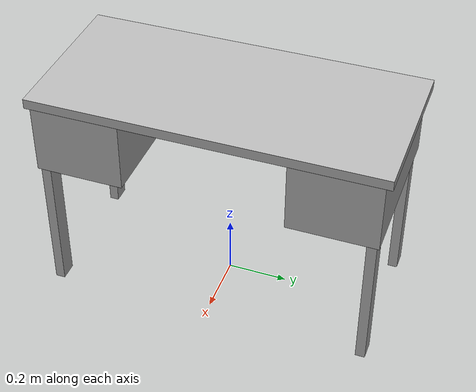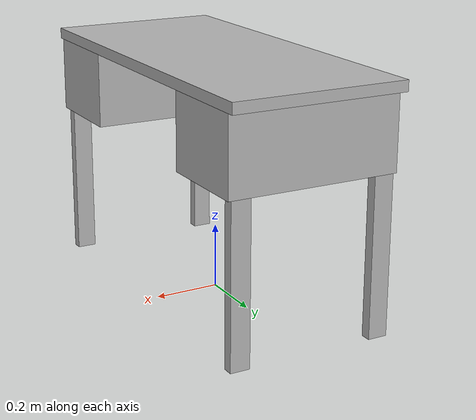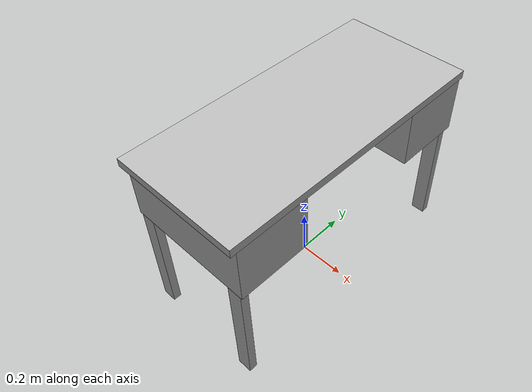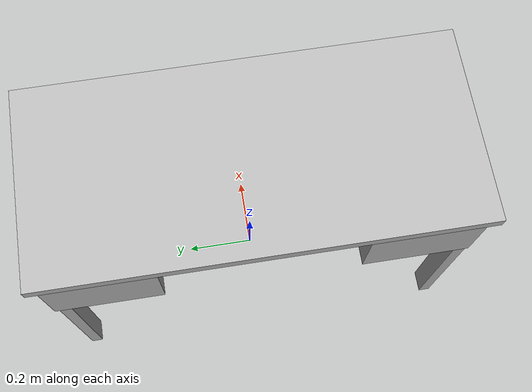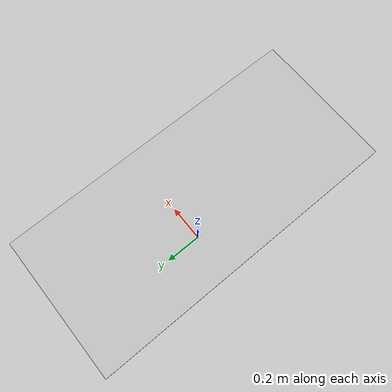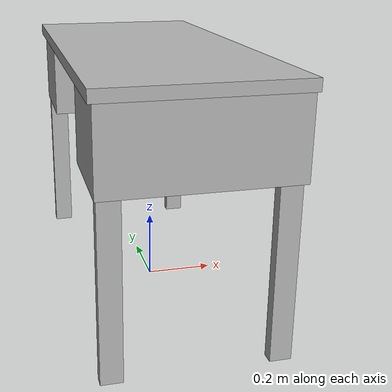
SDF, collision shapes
<?xml version="1.0" ?>
<sdf version="1.6">
  <model name="aws_robomaker_residential_ReadingDesk_01">
    <link name="link">
      <inertial>
        <mass>14.6</mass>
          <inertia>
            <ixx>0.78</ixx>
            <ixy>0</ixy>
            <ixz>0</ixz>
            <iyy>0.273</iyy>
            <iyz>0</iyz>
            <izz> 0.57375</izz>
          </inertia>
      </inertial>
      <collision name="aws_deskb_01_collision_collider_box">
        <pose>-0.002938 0.000884 0.727166 1.570796 -0.0 1.570796</pose>
        <geometry>
          <box>
            <size>1.15439 0.03297 0.532125</size>
          </box>
        </geometry>
      </collision>
      <collision name="aws_deskb_01_collision_collider_box.001">
        <pose>0.002939 -0.409902 0.596772 1.570796 -0.0 1.570796</pose>
        <geometry>
          <box>
            <size>0.291407 0.228623 0.520371</size>
          </box>
        </geometry>
      </collision>
      <collision name="aws_deskb_01_collision_collider_box.002">
        <pose>0.002939 0.412792 0.596772 1.570796 -0.0 1.570796</pose>
        <geometry>
          <box>
            <size>0.291407 0.228623 0.520371</size>
          </box>
        </geometry>
      </collision>
      <collision name="aws_deskb_01_collision_collider_box.003">
        <pose>0.219829 -0.535331 0.24382 1.570796 -0.0 1.570796</pose>
        <geometry>
          <box>
            <size>0.031976 0.490549 0.059089</size>
          </box>
        </geometry>
      </collision>
      <collision name="aws_deskb_01_collision_collider_box.004">
        <pose>-0.223823 -0.535331 0.24382 1.570796 -0.0 1.570796</pose>
        <geometry>
          <box>
            <size>0.031976 0.490549 0.059089</size>
          </box>
        </geometry>
      </collision>
      <collision name="aws_deskb_01_collision_collider_box.005">
        <pose>0.219829 0.533217 0.24382 1.570796 -0.0 1.570796</pose>
        <geometry>
          <box>
            <size>0.031976 0.490549 0.059089</size>
          </box>
        </geometry>
      </collision>
      <collision name="aws_deskb_01_collision_collider_box.006">
        <pose>-0.223823 0.533217 0.24382 1.570796 -0.0 1.570796</pose>
        <geometry>
          <box>
            <size>0.031976 0.490549 0.059089</size>
          </box>
        </geometry>
      </collision>
      <visual name="visual">
        <geometry>
          <mesh>
            <uri>model://aws_robomaker_residential_ReadingDesk_01/meshes/aws_ReadingDesk_01_visual.DAE</uri>
          </mesh>
        </geometry>
        <meta> <layer> 1 </layer></meta>
      </visual>
    </link>
  </model>
</sdf>
